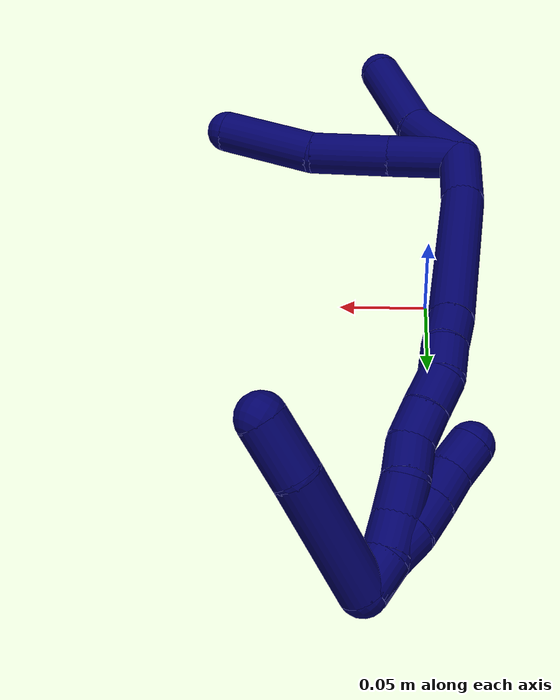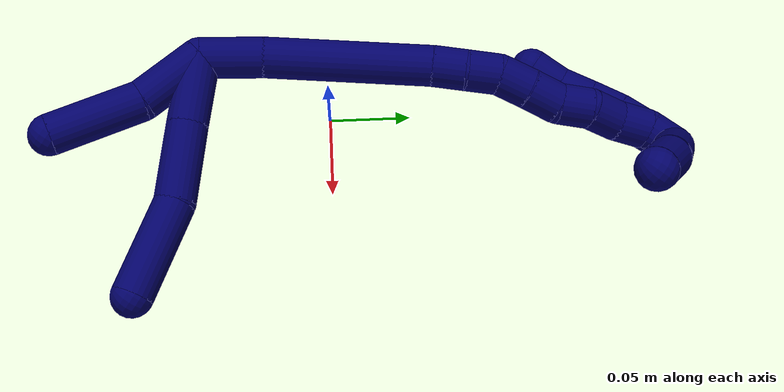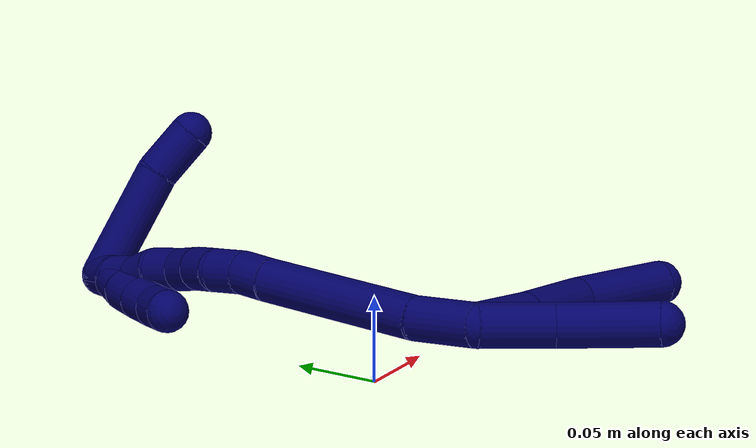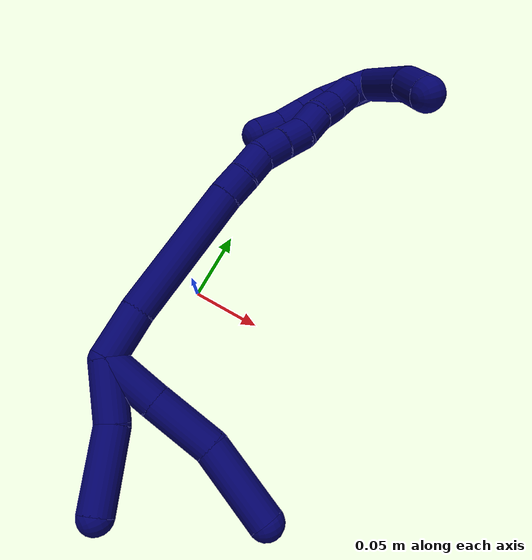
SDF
<sdf version="1.7">
 <world name="default">
  <model name="7">
   <static>0</static>
   <link name="7">
    <collision name="collision-cylinder-e_1_2_8">
     <pose>-0.008614 -0.017972 -0.007834 1.98187 -0.413954 -0.620498</pose>
     <geometry><cylinder><radius>0.0125</radius><length>0.042829</length></cylinder></geometry>
     <surface>
      <friction><ode><mu>1.16</mu><mu2>1.16</mu2><slip1>0</slip1><slip2>0</slip2></ode></friction>
      <contact><ode><kp>1e+06</kp><kd>1</kd><max_vel>0</max_vel><min_depth>0.001</min_depth></ode></contact>
     </surface>
    </collision>
    <visual name="visual-cylinder-e_1_2_8">
     <pose>-0.008614 -0.017972 -0.007834 1.98187 -0.413954 -0.620498</pose>
     <geometry><cylinder><radius>0.0125</radius><length>0.042829</length></cylinder></geometry>
     <material><ambient>0.003922 0 0.403922 1</ambient></material>
    </visual>
    <collision name="collision-cylinder-e_2_8_9">
     <pose>-0.025938 -0.056293 -0.024729 1.98969 -0.372802 -0.56527</pose>
     <geometry><cylinder><radius>0.0125</radius><length>0.047833</length></cylinder></geometry>
     <surface>
      <friction><ode><mu>1.16</mu><mu2>1.16</mu2><slip1>0</slip1><slip2>0</slip2></ode></friction>
      <contact><ode><kp>1e+06</kp><kd>1</kd><max_vel>0</max_vel><min_depth>0.001</min_depth></ode></contact>
     </surface>
    </collision>
    <visual name="visual-cylinder-e_2_8_9">
     <pose>-0.025938 -0.056293 -0.024729 1.98969 -0.372802 -0.56527</pose>
     <geometry><cylinder><radius>0.0125</radius><length>0.047833</length></cylinder></geometry>
     <material><ambient>0.003922 0 0.403922 1</ambient></material>
    </visual>
    <collision name="collision-cylinder-e_3_9_6">
     <pose>-0.047359 -0.10316 -0.037718 1.71791 -0.442713 -0.510327</pose>
     <geometry><cylinder><radius>0.0125</radius><length>0.059338</length></cylinder></geometry>
     <surface>
      <friction><ode><mu>1.16</mu><mu2>1.16</mu2><slip1>0</slip1><slip2>0</slip2></ode></friction>
      <contact><ode><kp>1e+06</kp><kd>1</kd><max_vel>0</max_vel><min_depth>0.001</min_depth></ode></contact>
     </surface>
    </collision>
    <visual name="visual-cylinder-e_3_9_6">
     <pose>-0.047359 -0.10316 -0.037718 1.71791 -0.442713 -0.510327</pose>
     <geometry><cylinder><radius>0.0125</radius><length>0.059338</length></cylinder></geometry>
     <material><ambient>0.003922 0 0.403922 1</ambient></material>
    </visual>
    <collision name="collision-cylinder-e_1_2_10">
     <pose>-0.012104 -0.016167 0.007164 1.15366 -0.600243 -0.397396</pose>
     <geometry><cylinder><radius>0.0125</radius><length>0.042857</length></cylinder></geometry>
     <surface>
      <friction><ode><mu>1.16</mu><mu2>1.16</mu2><slip1>0</slip1><slip2>0</slip2></ode></friction>
      <contact><ode><kp>1e+06</kp><kd>1</kd><max_vel>0</max_vel><min_depth>0.001</min_depth></ode></contact>
     </surface>
    </collision>
    <visual name="visual-cylinder-e_1_2_10">
     <pose>-0.012104 -0.016167 0.007164 1.15366 -0.600243 -0.397396</pose>
     <geometry><cylinder><radius>0.0125</radius><length>0.042857</length></cylinder></geometry>
     <material><ambient>0.003922 0 0.403922 1</ambient></material>
    </visual>
    <collision name="collision-cylinder-e_2_10_5">
     <pose>-0.038248 -0.050745 0.031068 0.83293 -0.513719 -0.231334</pose>
     <geometry><cylinder><radius>0.0125</radius><length>0.057143</length></cylinder></geometry>
     <surface>
      <friction><ode><mu>1.16</mu><mu2>1.16</mu2><slip1>0</slip1><slip2>0</slip2></ode></friction>
      <contact><ode><kp>1e+06</kp><kd>1</kd><max_vel>0</max_vel><min_depth>0.001</min_depth></ode></contact>
     </surface>
    </collision>
    <visual name="visual-cylinder-e_2_10_5">
     <pose>-0.038248 -0.050745 0.031068 0.83293 -0.513719 -0.231334</pose>
     <geometry><cylinder><radius>0.0125</radius><length>0.057143</length></cylinder></geometry>
     <material><ambient>0.003922 0 0.403922 1</ambient></material>
    </visual>
    <collision name="collision-cylinder-e_1_2_11">
     <pose>0.008495 0.006764 -0.015902 -2.73942 0.456919 -1.70206</pose>
     <geometry><cylinder><radius>0.0125</radius><length>0.038512</length></cylinder></geometry>
     <surface>
      <friction><ode><mu>1.16</mu><mu2>1.16</mu2><slip1>0</slip1><slip2>0</slip2></ode></friction>
      <contact><ode><kp>1e+06</kp><kd>1</kd><max_vel>0</max_vel><min_depth>0.001</min_depth></ode></contact>
     </surface>
    </collision>
    <visual name="visual-cylinder-e_1_2_11">
     <pose>0.008495 0.006764 -0.015902 -2.73942 0.456919 -1.70206</pose>
     <geometry><cylinder><radius>0.0125</radius><length>0.038512</length></cylinder></geometry>
     <material><ambient>0.003922 0 0.403922 1</ambient></material>
    </visual>
    <collision name="collision-cylinder-e_2_11_12">
     <pose>0.041488 0.024884 -0.074679 -2.88267 0.504625 -2.20632</pose>
     <geometry><cylinder><radius>0.0125</radius><length>0.101339</length></cylinder></geometry>
     <surface>
      <friction><ode><mu>1.16</mu><mu2>1.16</mu2><slip1>0</slip1><slip2>0</slip2></ode></friction>
      <contact><ode><kp>1e+06</kp><kd>1</kd><max_vel>0</max_vel><min_depth>0.001</min_depth></ode></contact>
     </surface>
    </collision>
    <visual name="visual-cylinder-e_2_11_12">
     <pose>0.041488 0.024884 -0.074679 -2.88267 0.504625 -2.20632</pose>
     <geometry><cylinder><radius>0.0125</radius><length>0.101339</length></cylinder></geometry>
     <material><ambient>0.003922 0 0.403922 1</ambient></material>
    </visual>
    <collision name="collision-cylinder-e_3_12_13">
     <pose>0.070532 0.037773 -0.126347 -2.96911 0.471114 -2.4501</pose>
     <geometry><cylinder><radius>0.0125</radius><length>0.020034</length></cylinder></geometry>
     <surface>
      <friction><ode><mu>1.16</mu><mu2>1.16</mu2><slip1>0</slip1><slip2>0</slip2></ode></friction>
      <contact><ode><kp>1e+06</kp><kd>1</kd><max_vel>0</max_vel><min_depth>0.001</min_depth></ode></contact>
     </surface>
    </collision>
    <visual name="visual-cylinder-e_3_12_13">
     <pose>0.070532 0.037773 -0.126347 -2.96911 0.471114 -2.4501</pose>
     <geometry><cylinder><radius>0.0125</radius><length>0.020034</length></cylinder></geometry>
     <material><ambient>0.003922 0 0.403922 1</ambient></material>
    </visual>
    <collision name="collision-cylinder-e_4_13_14">
     <pose>0.078638 0.04205 -0.144096 -2.84411 0.363127 -1.77248</pose>
     <geometry><cylinder><radius>0.0125</radius><length>0.02004</length></cylinder></geometry>
     <surface>
      <friction><ode><mu>1.16</mu><mu2>1.16</mu2><slip1>0</slip1><slip2>0</slip2></ode></friction>
      <contact><ode><kp>1e+06</kp><kd>1</kd><max_vel>0</max_vel><min_depth>0.001</min_depth></ode></contact>
     </surface>
    </collision>
    <visual name="visual-cylinder-e_4_13_14">
     <pose>0.078638 0.04205 -0.144096 -2.84411 0.363127 -1.77248</pose>
     <geometry><cylinder><radius>0.0125</radius><length>0.02004</length></cylinder></geometry>
     <material><ambient>0.003922 0 0.403922 1</ambient></material>
    </visual>
    <collision name="collision-cylinder-e_5_14_15">
     <pose>0.083881 0.045101 -0.162929 -3.11065 0.168795 -2.77978</pose>
     <geometry><cylinder><radius>0.0125</radius><length>0.020051</length></cylinder></geometry>
     <surface>
      <friction><ode><mu>1.16</mu><mu2>1.16</mu2><slip1>0</slip1><slip2>0</slip2></ode></friction>
      <contact><ode><kp>1e+06</kp><kd>1</kd><max_vel>0</max_vel><min_depth>0.001</min_depth></ode></contact>
     </surface>
    </collision>
    <visual name="visual-cylinder-e_5_14_15">
     <pose>0.083881 0.045101 -0.162929 -3.11065 0.168795 -2.77978</pose>
     <geometry><cylinder><radius>0.0125</radius><length>0.020051</length></cylinder></geometry>
     <material><ambient>0.003922 0 0.403922 1</ambient></material>
    </visual>
    <collision name="collision-cylinder-e_6_15_16">
     <pose>0.08662 0.046112 -0.18273 -3.07065 0.105592 -1.95893</pose>
     <geometry><cylinder><radius>0.0125</radius><length>0.020005</length></cylinder></geometry>
     <surface>
      <friction><ode><mu>1.16</mu><mu2>1.16</mu2><slip1>0</slip1><slip2>0</slip2></ode></friction>
      <contact><ode><kp>1e+06</kp><kd>1</kd><max_vel>0</max_vel><min_depth>0.001</min_depth></ode></contact>
     </surface>
    </collision>
    <visual name="visual-cylinder-e_6_15_16">
     <pose>0.08662 0.046112 -0.18273 -3.07065 0.105592 -1.95893</pose>
     <geometry><cylinder><radius>0.0125</radius><length>0.020005</length></cylinder></geometry>
     <material><ambient>0.003922 0 0.403922 1</ambient></material>
    </visual>
    <collision name="collision-cylinder-e_7_16_17">
     <pose>0.090801 0.049667 -0.201723 -2.83723 0.317732 -1.61446</pose>
     <geometry><cylinder><radius>0.0125</radius><length>0.020019</length></cylinder></geometry>
     <surface>
      <friction><ode><mu>1.16</mu><mu2>1.16</mu2><slip1>0</slip1><slip2>0</slip2></ode></friction>
      <contact><ode><kp>1e+06</kp><kd>1</kd><max_vel>0</max_vel><min_depth>0.001</min_depth></ode></contact>
     </surface>
    </collision>
    <visual name="visual-cylinder-e_7_16_17">
     <pose>0.090801 0.049667 -0.201723 -2.83723 0.317732 -1.61446</pose>
     <geometry><cylinder><radius>0.0125</radius><length>0.020019</length></cylinder></geometry>
     <material><ambient>0.003922 0 0.403922 1</ambient></material>
    </visual>
    <collision name="collision-cylinder-e_8_17_18">
     <pose>0.093921 0.05522 -0.220422 -2.86781 -0.000721 0.005234</pose>
     <geometry><cylinder><radius>0.0125</radius><length>0.02</length></cylinder></geometry>
     <surface>
      <friction><ode><mu>1.16</mu><mu2>1.16</mu2><slip1>0</slip1><slip2>0</slip2></ode></friction>
      <contact><ode><kp>1e+06</kp><kd>1</kd><max_vel>0</max_vel><min_depth>0.001</min_depth></ode></contact>
     </surface>
    </collision>
    <visual name="visual-cylinder-e_8_17_18">
     <pose>0.093921 0.05522 -0.220422 -2.86781 -0.000721 0.005234</pose>
     <geometry><cylinder><radius>0.0125</radius><length>0.02</length></cylinder></geometry>
     <material><ambient>0.003922 0 0.403922 1</ambient></material>
    </visual>
    <collision name="collision-cylinder-e_9_18_19">
     <pose>0.096276 0.059901 -0.239563 -2.93667 0.238458 -1.723</pose>
     <geometry><cylinder><radius>0.0125</radius><length>0.02</length></cylinder></geometry>
     <surface>
      <friction><ode><mu>1.16</mu><mu2>1.16</mu2><slip1>0</slip1><slip2>0</slip2></ode></friction>
      <contact><ode><kp>1e+06</kp><kd>1</kd><max_vel>0</max_vel><min_depth>0.001</min_depth></ode></contact>
     </surface>
    </collision>
    <visual name="visual-cylinder-e_9_18_19">
     <pose>0.096276 0.059901 -0.239563 -2.93667 0.238458 -1.723</pose>
     <geometry><cylinder><radius>0.0125</radius><length>0.02</length></cylinder></geometry>
     <material><ambient>0.003922 0 0.403922 1</ambient></material>
    </visual>
    <collision name="collision-cylinder-e_10_19_1">
     <pose>0.099653 0.060961 -0.258983 3.04923 0.101638 1.66652</pose>
     <geometry><cylinder><radius>0.0125</radius><length>0.02</length></cylinder></geometry>
     <surface>
      <friction><ode><mu>1.16</mu><mu2>1.16</mu2><slip1>0</slip1><slip2>0</slip2></ode></friction>
      <contact><ode><kp>1e+06</kp><kd>1</kd><max_vel>0</max_vel><min_depth>0.001</min_depth></ode></contact>
     </surface>
    </collision>
    <visual name="visual-cylinder-e_10_19_1">
     <pose>0.099653 0.060961 -0.258983 3.04923 0.101638 1.66652</pose>
     <geometry><cylinder><radius>0.0125</radius><length>0.02</length></cylinder></geometry>
     <material><ambient>0.003922 0 0.403922 1</ambient></material>
    </visual>
    <collision name="collision-cylinder-e_1_1_20">
     <pose>0.116874 0.031585 -0.257992 1.2051 0.488806 0.339795</pose>
     <geometry><cylinder><radius>0.0125</radius><length>0.06903</length></cylinder></geometry>
     <surface>
      <friction><ode><mu>1.16</mu><mu2>1.16</mu2><slip1>0</slip1><slip2>0</slip2></ode></friction>
      <contact><ode><kp>1e+06</kp><kd>1</kd><max_vel>0</max_vel><min_depth>0.001</min_depth></ode></contact>
     </surface>
    </collision>
    <visual name="visual-cylinder-e_1_1_20">
     <pose>0.116874 0.031585 -0.257992 1.2051 0.488806 0.339795</pose>
     <geometry><cylinder><radius>0.0125</radius><length>0.06903</length></cylinder></geometry>
     <material><ambient>0.003922 0 0.403922 1</ambient></material>
    </visual>
    <collision name="collision-cylinder-e_2_20_4">
     <pose>0.137244 -0.010613 -0.241292 1.17121 0.272169 0.181131</pose>
     <geometry><cylinder><radius>0.0125</radius><length>0.03097</length></cylinder></geometry>
     <surface>
      <friction><ode><mu>1.16</mu><mu2>1.16</mu2><slip1>0</slip1><slip2>0</slip2></ode></friction>
      <contact><ode><kp>1e+06</kp><kd>1</kd><max_vel>0</max_vel><min_depth>0.001</min_depth></ode></contact>
     </surface>
    </collision>
    <visual name="visual-cylinder-e_2_20_4">
     <pose>0.137244 -0.010613 -0.241292 1.17121 0.272169 0.181131</pose>
     <geometry><cylinder><radius>0.0125</radius><length>0.03097</length></cylinder></geometry>
     <material><ambient>0.003922 0 0.403922 1</ambient></material>
    </visual>
    <collision name="collision-cylinder-e_1_1_21">
     <pose>0.099021 0.061209 -0.259095 -0.118434 -0.16532 0.009824</pose>
     <geometry><cylinder><radius>0.0125</radius><length>0.02</length></cylinder></geometry>
     <surface>
      <friction><ode><mu>1.16</mu><mu2>1.16</mu2><slip1>0</slip1><slip2>0</slip2></ode></friction>
      <contact><ode><kp>1e+06</kp><kd>1</kd><max_vel>0</max_vel><min_depth>0.001</min_depth></ode></contact>
     </surface>
    </collision>
    <visual name="visual-cylinder-e_1_1_21">
     <pose>0.099021 0.061209 -0.259095 -0.118434 -0.16532 0.009824</pose>
     <geometry><cylinder><radius>0.0125</radius><length>0.02</length></cylinder></geometry>
     <material><ambient>0.003922 0 0.403922 1</ambient></material>
    </visual>
    <collision name="collision-cylinder-e_2_21_22">
     <pose>0.094619 0.065218 -0.240118 -0.300332 -0.279336 0.042535</pose>
     <geometry><cylinder><radius>0.0125</radius><length>0.02</length></cylinder></geometry>
     <surface>
      <friction><ode><mu>1.16</mu><mu2>1.16</mu2><slip1>0</slip1><slip2>0</slip2></ode></friction>
      <contact><ode><kp>1e+06</kp><kd>1</kd><max_vel>0</max_vel><min_depth>0.001</min_depth></ode></contact>
     </surface>
    </collision>
    <visual name="visual-cylinder-e_2_21_22">
     <pose>0.094619 0.065218 -0.240118 -0.300332 -0.279336 0.042535</pose>
     <geometry><cylinder><radius>0.0125</radius><length>0.02</length></cylinder></geometry>
     <material><ambient>0.003922 0 0.403922 1</ambient></material>
    </visual>
    <collision name="collision-cylinder-e_3_22_23">
     <pose>0.088799 0.069297 -0.221497 -0.130144 -0.311297 0.02045</pose>
     <geometry><cylinder><radius>0.0125</radius><length>0.02</length></cylinder></geometry>
     <surface>
      <friction><ode><mu>1.16</mu><mu2>1.16</mu2><slip1>0</slip1><slip2>0</slip2></ode></friction>
      <contact><ode><kp>1e+06</kp><kd>1</kd><max_vel>0</max_vel><min_depth>0.001</min_depth></ode></contact>
     </surface>
    </collision>
    <visual name="visual-cylinder-e_3_22_23">
     <pose>0.088799 0.069297 -0.221497 -0.130144 -0.311297 0.02045</pose>
     <geometry><cylinder><radius>0.0125</radius><length>0.02</length></cylinder></geometry>
     <material><ambient>0.003922 0 0.403922 1</ambient></material>
    </visual>
    <collision name="collision-cylinder-e_4_23_24">
     <pose>0.082725 0.071407 -0.202562 -0.09186 -0.30577 0.014164</pose>
     <geometry><cylinder><radius>0.0125</radius><length>0.02</length></cylinder></geometry>
     <surface>
      <friction><ode><mu>1.16</mu><mu2>1.16</mu2><slip1>0</slip1><slip2>0</slip2></ode></friction>
      <contact><ode><kp>1e+06</kp><kd>1</kd><max_vel>0</max_vel><min_depth>0.001</min_depth></ode></contact>
     </surface>
    </collision>
    <visual name="visual-cylinder-e_4_23_24">
     <pose>0.082725 0.071407 -0.202562 -0.09186 -0.30577 0.014164</pose>
     <geometry><cylinder><radius>0.0125</radius><length>0.02</length></cylinder></geometry>
     <material><ambient>0.003922 0 0.403922 1</ambient></material>
    </visual>
    <collision name="collision-cylinder-e_5_24_3">
     <pose>0.078426 0.073898 -0.183282 -0.163668 -0.129222 0.010613</pose>
     <geometry><cylinder><radius>0.0125</radius><length>0.02</length></cylinder></geometry>
     <surface>
      <friction><ode><mu>1.16</mu><mu2>1.16</mu2><slip1>0</slip1><slip2>0</slip2></ode></friction>
      <contact><ode><kp>1e+06</kp><kd>1</kd><max_vel>0</max_vel><min_depth>0.001</min_depth></ode></contact>
     </surface>
    </collision>
    <visual name="visual-cylinder-e_5_24_3">
     <pose>0.078426 0.073898 -0.183282 -0.163668 -0.129222 0.010613</pose>
     <geometry><cylinder><radius>0.0125</radius><length>0.02</length></cylinder></geometry>
     <material><ambient>0.003922 0 0.403922 1</ambient></material>
    </visual>
    <collision name="collision-sphere-3">
     <pose>0.077138 0.075514 -0.173498 0 -0 0</pose>
     <geometry><sphere><radius>0.0125</radius></sphere></geometry>
     <surface>
      <friction><ode><mu>1.16</mu><mu2>1.16</mu2><slip1>0</slip1><slip2>0</slip2></ode></friction>
      <contact><ode><kp>1e+06</kp><kd>1</kd><max_vel>0</max_vel><min_depth>0.001</min_depth></ode></contact>
     </surface>
    </collision>
    <visual name="visual-sphere-3">
     <pose>0.077138 0.075514 -0.173498 0 -0 0</pose>
     <geometry><sphere><radius>0.0125</radius></sphere></geometry>
     <material><ambient>0.003922 0 0.403922 1</ambient></material>
    </visual>
    <collision name="collision-sphere-24">
     <pose>0.079715 0.072282 -0.193066 0 -0 0</pose>
     <geometry><sphere><radius>0.0125</radius></sphere></geometry>
     <surface>
      <friction><ode><mu>1.16</mu><mu2>1.16</mu2><slip1>0</slip1><slip2>0</slip2></ode></friction>
      <contact><ode><kp>1e+06</kp><kd>1</kd><max_vel>0</max_vel><min_depth>0.001</min_depth></ode></contact>
     </surface>
    </collision>
    <visual name="visual-sphere-24">
     <pose>0.079715 0.072282 -0.193066 0 -0 0</pose>
     <geometry><sphere><radius>0.0125</radius></sphere></geometry>
     <material><ambient>0.003922 0 0.403922 1</ambient></material>
    </visual>
    <collision name="collision-sphere-23">
     <pose>0.085736 0.070532 -0.212058 0 -0 0</pose>
     <geometry><sphere><radius>0.0125</radius></sphere></geometry>
     <surface>
      <friction><ode><mu>1.16</mu><mu2>1.16</mu2><slip1>0</slip1><slip2>0</slip2></ode></friction>
      <contact><ode><kp>1e+06</kp><kd>1</kd><max_vel>0</max_vel><min_depth>0.001</min_depth></ode></contact>
     </surface>
    </collision>
    <visual name="visual-sphere-23">
     <pose>0.085736 0.070532 -0.212058 0 -0 0</pose>
     <geometry><sphere><radius>0.0125</radius></sphere></geometry>
     <material><ambient>0.003922 0 0.403922 1</ambient></material>
    </visual>
    <collision name="collision-sphere-22">
     <pose>0.091861 0.068062 -0.230936 0 -0 0</pose>
     <geometry><sphere><radius>0.0125</radius></sphere></geometry>
     <surface>
      <friction><ode><mu>1.16</mu><mu2>1.16</mu2><slip1>0</slip1><slip2>0</slip2></ode></friction>
      <contact><ode><kp>1e+06</kp><kd>1</kd><max_vel>0</max_vel><min_depth>0.001</min_depth></ode></contact>
     </surface>
    </collision>
    <visual name="visual-sphere-22">
     <pose>0.091861 0.068062 -0.230936 0 -0 0</pose>
     <geometry><sphere><radius>0.0125</radius></sphere></geometry>
     <material><ambient>0.003922 0 0.403922 1</ambient></material>
    </visual>
    <collision name="collision-sphere-21">
     <pose>0.097376 0.062374 -0.2493 0 -0 0</pose>
     <geometry><sphere><radius>0.0125</radius></sphere></geometry>
     <surface>
      <friction><ode><mu>1.16</mu><mu2>1.16</mu2><slip1>0</slip1><slip2>0</slip2></ode></friction>
      <contact><ode><kp>1e+06</kp><kd>1</kd><max_vel>0</max_vel><min_depth>0.001</min_depth></ode></contact>
     </surface>
    </collision>
    <visual name="visual-sphere-21">
     <pose>0.097376 0.062374 -0.2493 0 -0 0</pose>
     <geometry><sphere><radius>0.0125</radius></sphere></geometry>
     <material><ambient>0.003922 0 0.403922 1</ambient></material>
    </visual>
    <collision name="collision-sphere-4">
     <pose>0.141407 -0.024353 -0.23549 0 -0 0</pose>
     <geometry><sphere><radius>0.0125</radius></sphere></geometry>
     <surface>
      <friction><ode><mu>1.16</mu><mu2>1.16</mu2><slip1>0</slip1><slip2>0</slip2></ode></friction>
      <contact><ode><kp>1e+06</kp><kd>1</kd><max_vel>0</max_vel><min_depth>0.001</min_depth></ode></contact>
     </surface>
    </collision>
    <visual name="visual-sphere-4">
     <pose>0.141407 -0.024353 -0.23549 0 -0 0</pose>
     <geometry><sphere><radius>0.0125</radius></sphere></geometry>
     <material><ambient>0.003922 0 0.403922 1</ambient></material>
    </visual>
    <collision name="collision-sphere-20">
     <pose>0.133082 0.003127 -0.247095 0 -0 0</pose>
     <geometry><sphere><radius>0.0125</radius></sphere></geometry>
     <surface>
      <friction><ode><mu>1.16</mu><mu2>1.16</mu2><slip1>0</slip1><slip2>0</slip2></ode></friction>
      <contact><ode><kp>1e+06</kp><kd>1</kd><max_vel>0</max_vel><min_depth>0.001</min_depth></ode></contact>
     </surface>
    </collision>
    <visual name="visual-sphere-20">
     <pose>0.133082 0.003127 -0.247095 0 -0 0</pose>
     <geometry><sphere><radius>0.0125</radius></sphere></geometry>
     <material><ambient>0.003922 0 0.403922 1</ambient></material>
    </visual>
    <collision name="collision-sphere-5">
     <pose>-0.052289 -0.069156 0.047807 0 -0 0</pose>
     <geometry><sphere><radius>0.0125</radius></sphere></geometry>
     <surface>
      <friction><ode><mu>1.16</mu><mu2>1.16</mu2><slip1>0</slip1><slip2>0</slip2></ode></friction>
      <contact><ode><kp>1e+06</kp><kd>1</kd><max_vel>0</max_vel><min_depth>0.001</min_depth></ode></contact>
     </surface>
    </collision>
    <visual name="visual-sphere-5">
     <pose>-0.052289 -0.069156 0.047807 0 -0 0</pose>
     <geometry><sphere><radius>0.0125</radius></sphere></geometry>
     <material><ambient>0.003922 0 0.403922 1</ambient></material>
    </visual>
    <collision name="collision-sphere-10">
     <pose>-0.024208 -0.032333 0.014328 0 -0 0</pose>
     <geometry><sphere><radius>0.0125</radius></sphere></geometry>
     <surface>
      <friction><ode><mu>1.16</mu><mu2>1.16</mu2><slip1>0</slip1><slip2>0</slip2></ode></friction>
      <contact><ode><kp>1e+06</kp><kd>1</kd><max_vel>0</max_vel><min_depth>0.001</min_depth></ode></contact>
     </surface>
    </collision>
    <visual name="visual-sphere-10">
     <pose>-0.024208 -0.032333 0.014328 0 -0 0</pose>
     <geometry><sphere><radius>0.0125</radius></sphere></geometry>
     <material><ambient>0.003922 0 0.403922 1</ambient></material>
    </visual>
    <collision name="collision-sphere-6">
     <pose>-0.060069 -0.129679 -0.041648 0 -0 0</pose>
     <geometry><sphere><radius>0.0125</radius></sphere></geometry>
     <surface>
      <friction><ode><mu>1.16</mu><mu2>1.16</mu2><slip1>0</slip1><slip2>0</slip2></ode></friction>
      <contact><ode><kp>1e+06</kp><kd>1</kd><max_vel>0</max_vel><min_depth>0.001</min_depth></ode></contact>
     </surface>
    </collision>
    <visual name="visual-sphere-6">
     <pose>-0.060069 -0.129679 -0.041648 0 -0 0</pose>
     <geometry><sphere><radius>0.0125</radius></sphere></geometry>
     <material><ambient>0.003922 0 0.403922 1</ambient></material>
    </visual>
    <collision name="collision-sphere-9">
     <pose>-0.034649 -0.076641 -0.033789 0 -0 0</pose>
     <geometry><sphere><radius>0.0125</radius></sphere></geometry>
     <surface>
      <friction><ode><mu>1.16</mu><mu2>1.16</mu2><slip1>0</slip1><slip2>0</slip2></ode></friction>
      <contact><ode><kp>1e+06</kp><kd>1</kd><max_vel>0</max_vel><min_depth>0.001</min_depth></ode></contact>
     </surface>
    </collision>
    <visual name="visual-sphere-9">
     <pose>-0.034649 -0.076641 -0.033789 0 -0 0</pose>
     <geometry><sphere><radius>0.0125</radius></sphere></geometry>
     <material><ambient>0.003922 0 0.403922 1</ambient></material>
    </visual>
    <collision name="collision-sphere-2">
     <geometry><sphere><radius>0.0125</radius></sphere></geometry>
     <surface>
      <friction><ode><mu>1.16</mu><mu2>1.16</mu2><slip1>0</slip1><slip2>0</slip2></ode></friction>
      <contact><ode><kp>1e+06</kp><kd>1</kd><max_vel>0</max_vel><min_depth>0.001</min_depth></ode></contact>
     </surface>
    </collision>
    <visual name="visual-sphere-2">
     <geometry><sphere><radius>0.0125</radius></sphere></geometry>
     <material><ambient>0.003922 0 0.403922 1</ambient></material>
    </visual>
    <collision name="collision-sphere-19">
     <pose>0.098638 0.061878 -0.249077 0 -0 0</pose>
     <geometry><sphere><radius>0.0125</radius></sphere></geometry>
     <surface>
      <friction><ode><mu>1.16</mu><mu2>1.16</mu2><slip1>0</slip1><slip2>0</slip2></ode></friction>
      <contact><ode><kp>1e+06</kp><kd>1</kd><max_vel>0</max_vel><min_depth>0.001</min_depth></ode></contact>
     </surface>
    </collision>
    <visual name="visual-sphere-19">
     <pose>0.098638 0.061878 -0.249077 0 -0 0</pose>
     <geometry><sphere><radius>0.0125</radius></sphere></geometry>
     <material><ambient>0.003922 0 0.403922 1</ambient></material>
    </visual>
    <collision name="collision-sphere-8">
     <pose>-0.017227 -0.035945 -0.015669 0 -0 0</pose>
     <geometry><sphere><radius>0.0125</radius></sphere></geometry>
     <surface>
      <friction><ode><mu>1.16</mu><mu2>1.16</mu2><slip1>0</slip1><slip2>0</slip2></ode></friction>
      <contact><ode><kp>1e+06</kp><kd>1</kd><max_vel>0</max_vel><min_depth>0.001</min_depth></ode></contact>
     </surface>
    </collision>
    <visual name="visual-sphere-8">
     <pose>-0.017227 -0.035945 -0.015669 0 -0 0</pose>
     <geometry><sphere><radius>0.0125</radius></sphere></geometry>
     <material><ambient>0.003922 0 0.403922 1</ambient></material>
    </visual>
    <collision name="collision-sphere-11">
     <pose>0.016991 0.013528 -0.031804 0 -0 0</pose>
     <geometry><sphere><radius>0.0125</radius></sphere></geometry>
     <surface>
      <friction><ode><mu>1.16</mu><mu2>1.16</mu2><slip1>0</slip1><slip2>0</slip2></ode></friction>
      <contact><ode><kp>1e+06</kp><kd>1</kd><max_vel>0</max_vel><min_depth>0.001</min_depth></ode></contact>
     </surface>
    </collision>
    <visual name="visual-sphere-11">
     <pose>0.016991 0.013528 -0.031804 0 -0 0</pose>
     <geometry><sphere><radius>0.0125</radius></sphere></geometry>
     <material><ambient>0.003922 0 0.403922 1</ambient></material>
    </visual>
    <collision name="collision-sphere-12">
     <pose>0.065986 0.036241 -0.117554 0 -0 0</pose>
     <geometry><sphere><radius>0.0125</radius></sphere></geometry>
     <surface>
      <friction><ode><mu>1.16</mu><mu2>1.16</mu2><slip1>0</slip1><slip2>0</slip2></ode></friction>
      <contact><ode><kp>1e+06</kp><kd>1</kd><max_vel>0</max_vel><min_depth>0.001</min_depth></ode></contact>
     </surface>
    </collision>
    <visual name="visual-sphere-12">
     <pose>0.065986 0.036241 -0.117554 0 -0 0</pose>
     <geometry><sphere><radius>0.0125</radius></sphere></geometry>
     <material><ambient>0.003922 0 0.403922 1</ambient></material>
    </visual>
    <collision name="collision-sphere-13">
     <pose>0.075079 0.039304 -0.13514 0 -0 0</pose>
     <geometry><sphere><radius>0.0125</radius></sphere></geometry>
     <surface>
      <friction><ode><mu>1.16</mu><mu2>1.16</mu2><slip1>0</slip1><slip2>0</slip2></ode></friction>
      <contact><ode><kp>1e+06</kp><kd>1</kd><max_vel>0</max_vel><min_depth>0.001</min_depth></ode></contact>
     </surface>
    </collision>
    <visual name="visual-sphere-13">
     <pose>0.075079 0.039304 -0.13514 0 -0 0</pose>
     <geometry><sphere><radius>0.0125</radius></sphere></geometry>
     <material><ambient>0.003922 0 0.403922 1</ambient></material>
    </visual>
    <collision name="collision-sphere-14">
     <pose>0.082197 0.044795 -0.153051 0 -0 0</pose>
     <geometry><sphere><radius>0.0125</radius></sphere></geometry>
     <surface>
      <friction><ode><mu>1.16</mu><mu2>1.16</mu2><slip1>0</slip1><slip2>0</slip2></ode></friction>
      <contact><ode><kp>1e+06</kp><kd>1</kd><max_vel>0</max_vel><min_depth>0.001</min_depth></ode></contact>
     </surface>
    </collision>
    <visual name="visual-sphere-14">
     <pose>0.082197 0.044795 -0.153051 0 -0 0</pose>
     <geometry><sphere><radius>0.0125</radius></sphere></geometry>
     <material><ambient>0.003922 0 0.403922 1</ambient></material>
    </visual>
    <collision name="collision-sphere-15">
     <pose>0.085566 0.045407 -0.172808 0 -0 0</pose>
     <geometry><sphere><radius>0.0125</radius></sphere></geometry>
     <surface>
      <friction><ode><mu>1.16</mu><mu2>1.16</mu2><slip1>0</slip1><slip2>0</slip2></ode></friction>
      <contact><ode><kp>1e+06</kp><kd>1</kd><max_vel>0</max_vel><min_depth>0.001</min_depth></ode></contact>
     </surface>
    </collision>
    <visual name="visual-sphere-15">
     <pose>0.085566 0.045407 -0.172808 0 -0 0</pose>
     <geometry><sphere><radius>0.0125</radius></sphere></geometry>
     <material><ambient>0.003922 0 0.403922 1</ambient></material>
    </visual>
    <collision name="collision-sphere-16">
     <pose>0.087674 0.046817 -0.192651 0 -0 0</pose>
     <geometry><sphere><radius>0.0125</radius></sphere></geometry>
     <surface>
      <friction><ode><mu>1.16</mu><mu2>1.16</mu2><slip1>0</slip1><slip2>0</slip2></ode></friction>
      <contact><ode><kp>1e+06</kp><kd>1</kd><max_vel>0</max_vel><min_depth>0.001</min_depth></ode></contact>
     </surface>
    </collision>
    <visual name="visual-sphere-16">
     <pose>0.087674 0.046817 -0.192651 0 -0 0</pose>
     <geometry><sphere><radius>0.0125</radius></sphere></geometry>
     <material><ambient>0.003922 0 0.403922 1</ambient></material>
    </visual>
    <collision name="collision-sphere-17">
     <pose>0.093928 0.052516 -0.210794 0 -0 0</pose>
     <geometry><sphere><radius>0.0125</radius></sphere></geometry>
     <surface>
      <friction><ode><mu>1.16</mu><mu2>1.16</mu2><slip1>0</slip1><slip2>0</slip2></ode></friction>
      <contact><ode><kp>1e+06</kp><kd>1</kd><max_vel>0</max_vel><min_depth>0.001</min_depth></ode></contact>
     </surface>
    </collision>
    <visual name="visual-sphere-17">
     <pose>0.093928 0.052516 -0.210794 0 -0 0</pose>
     <geometry><sphere><radius>0.0125</radius></sphere></geometry>
     <material><ambient>0.003922 0 0.403922 1</ambient></material>
    </visual>
    <collision name="collision-sphere-18">
     <pose>0.093914 0.057924 -0.230049 0 -0 0</pose>
     <geometry><sphere><radius>0.0125</radius></sphere></geometry>
     <surface>
      <friction><ode><mu>1.16</mu><mu2>1.16</mu2><slip1>0</slip1><slip2>0</slip2></ode></friction>
      <contact><ode><kp>1e+06</kp><kd>1</kd><max_vel>0</max_vel><min_depth>0.001</min_depth></ode></contact>
     </surface>
    </collision>
    <visual name="visual-sphere-18">
     <pose>0.093914 0.057924 -0.230049 0 -0 0</pose>
     <geometry><sphere><radius>0.0125</radius></sphere></geometry>
     <material><ambient>0.003922 0 0.403922 1</ambient></material>
    </visual>
    <collision name="collision-sphere-1">
     <pose>0.100667 0.060043 -0.268889 0 -0 0</pose>
     <geometry><sphere><radius>0.0125</radius></sphere></geometry>
     <surface>
      <friction><ode><mu>1.16</mu><mu2>1.16</mu2><slip1>0</slip1><slip2>0</slip2></ode></friction>
      <contact><ode><kp>1e+06</kp><kd>1</kd><max_vel>0</max_vel><min_depth>0.001</min_depth></ode></contact>
     </surface>
    </collision>
    <visual name="visual-sphere-1">
     <pose>0.100667 0.060043 -0.268889 0 -0 0</pose>
     <geometry><sphere><radius>0.0125</radius></sphere></geometry>
     <material><ambient>0.003922 0 0.403922 1</ambient></material>
    </visual>
    <inertial>
     <pose>0.043488 0.008294 -0.117369 0 -0 0</pose>
     <mass>0.75</mass>
     <inertia><ixx>-5.2e-05</ixx><ixy>0</ixy><ixz>0</ixz><iyy>-1e-06</iyy><iyz>0</iyz><izz>1e-05</izz></inertia>
    </inertial>
   </link>
   <pose>-0.020284 -0.076237 0.053081 -0.873673 -0.990319 1.99653</pose>
  </model>
 </world>
</sdf>
